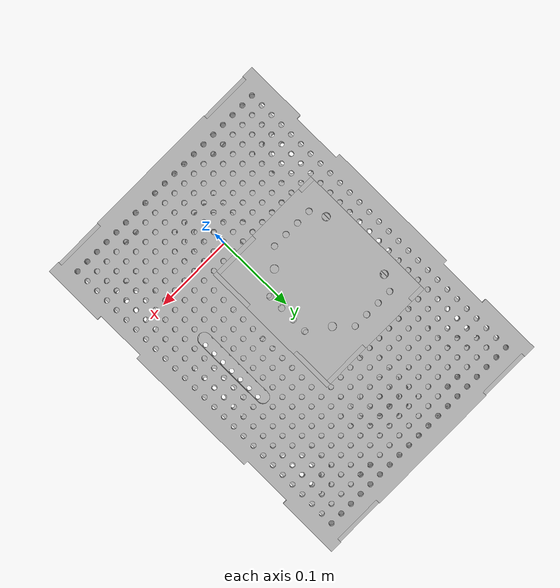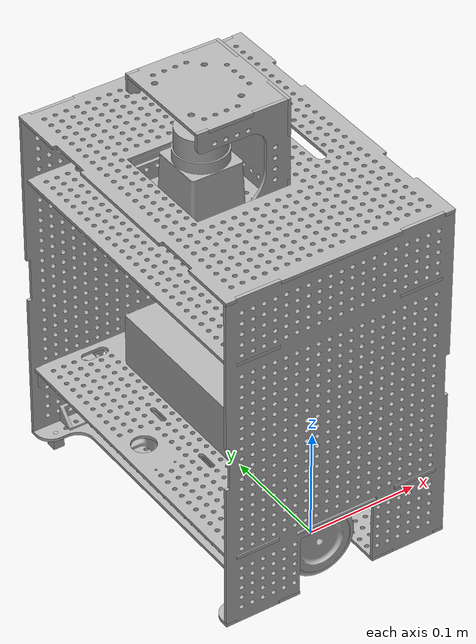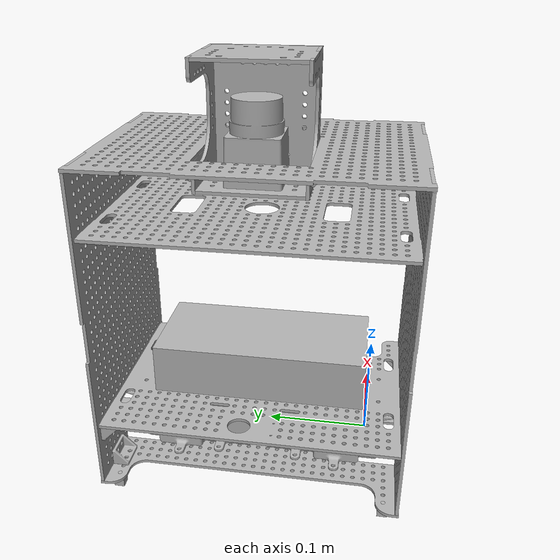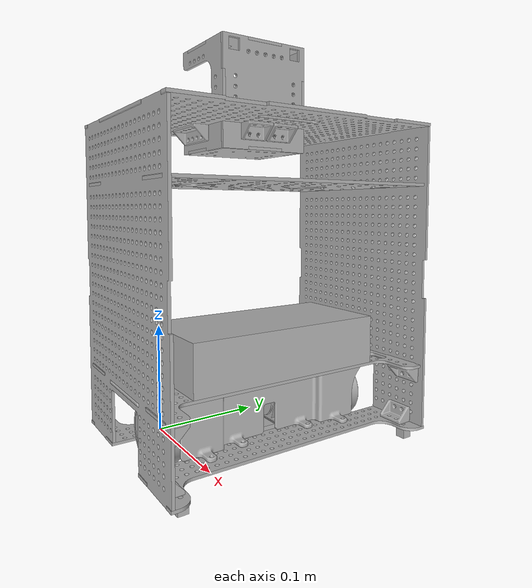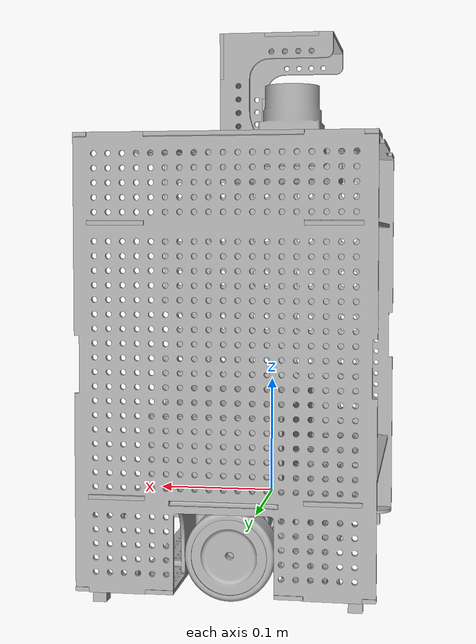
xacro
<?xml version="1.0" ?>
<robot name="tartinator_noencoder" xmlns:xacro="http://www.ros.org/wiki/xacro">

<xacro:include filename="$(find tartinator_noencoder_description)/urdf/materials.xacro" />
<xacro:include filename="$(find tartinator_noencoder_description)/urdf/tartinator_noencoder.trans" />
<xacro:include filename="$(find tartinator_noencoder_description)/urdf/tartinator_noencoder.gazebo" />

<link name="base_link">
</link>

<link name="base">
  <inertial>
    <origin xyz="0.020100000000000017 0.10879999999998086 1.6249248159358388e-15" rpy="0 0 0"/>
    <mass value="0.08458971943251423"/>
    <inertia ixx="0.00072" iyy="0.000198" izz="0.000523" ixy="-0.0" iyz="-0.0" ixz="-0.0"/>
  </inertial>
  <visual>
    <origin xyz="0 0 0" rpy="0 0 0"/>
    <geometry>
      <mesh filename="file://$(find tartinator_noencoder_description)/meshes/base.stl" scale="0.001 0.001 0.001"/>
    </geometry>
    <material name="silver"/>
  </visual>
  <collision>
    <origin xyz="0 0 0" rpy="0 0 0"/>
    <geometry>
      <mesh filename="file://$(find tartinator_noencoder_description)/meshes/base.stl" scale="0.001 0.001 0.001"/>
    </geometry>
  </collision>
</link>

<link name="EQUERRE_7">
  <inertial>
    <origin xyz="-0.005431296008595168 0.0056687066755743976 0.004999996250139985" rpy="0 0 0"/>
    <mass value="0.021866191266104597"/>
    <inertia ixx="2e-06" iyy="2e-06" izz="1e-06" ixy="0.0" iyz="-0.0" ixz="-0.0"/>
  </inertial>
  <visual>
    <origin xyz="-0.0186 -0.2388 0.07" rpy="0 0 0"/>
    <geometry>
      <mesh filename="file://$(find tartinator_noencoder_description)/meshes/EQUERRE_7.stl" scale="0.001 0.001 0.001"/>
    </geometry>
    <material name="silver"/>
  </visual>
  <collision>
    <origin xyz="-0.0186 -0.2388 0.07" rpy="0 0 0"/>
    <geometry>
      <mesh filename="file://$(find tartinator_noencoder_description)/meshes/EQUERRE_7.stl" scale="0.001 0.001 0.001"/>
    </geometry>
  </collision>
</link>

<link name="EQUERRE_8">
  <inertial>
    <origin xyz="0.23186870399140486 0.1542687066755744 0.14499999625013998" rpy="0 0 0"/>
    <mass value="0.021866191266104597"/>
    <inertia ixx="2e-06" iyy="2e-06" izz="1e-06" ixy="0.0" iyz="-0.0" ixz="-0.0"/>
  </inertial>
  <visual>
    <origin xyz="0.2187 -0.0902 0.07" rpy="0 0 0"/>
    <geometry>
      <mesh filename="file://$(find tartinator_noencoder_description)/meshes/EQUERRE_8.stl" scale="0.001 0.001 0.001"/>
    </geometry>
    <material name="silver"/>
  </visual>
  <collision>
    <origin xyz="0.2187 -0.0902 0.07" rpy="0 0 0"/>
    <geometry>
      <mesh filename="file://$(find tartinator_noencoder_description)/meshes/EQUERRE_8.stl" scale="0.001 0.001 0.001"/>
    </geometry>
  </collision>
</link>

<link name="MUR_2">
  <inertial>
    <origin xyz="0.08546978359187204 -0.06044999999999989 0.057499999999974065" rpy="0 0 0"/>
    <mass value="0.1545223214885139"/>
    <inertia ixx="0.000605" iyy="0.001811" izz="0.001207" ixy="-0.0" iyz="-0.0" ixz="-0.0"/>
  </inertial>
  <visual>
    <origin xyz="0.2313 -0.31185 0.0575" rpy="0 0 0"/>
    <geometry>
      <mesh filename="file://$(find tartinator_noencoder_description)/meshes/MUR_2.stl" scale="0.001 0.001 0.001"/>
    </geometry>
    <material name="silver"/>
  </visual>
  <collision>
    <origin xyz="0.2313 -0.31185 0.0575" rpy="0 0 0"/>
    <geometry>
      <mesh filename="file://$(find tartinator_noencoder_description)/meshes/MUR_2.stl" scale="0.001 0.001 0.001"/>
    </geometry>
  </collision>
</link>

<link name="MUR_1">
  <inertial>
    <origin xyz="0.08546978359187204 0.06045000000000005 -0.06749999999997404" rpy="0 0 0"/>
    <mass value="0.1545223214885139"/>
    <inertia ixx="0.000605" iyy="0.001811" izz="0.001207" ixy="0.0" iyz="-0.0" ixz="0.0"/>
  </inertial>
  <visual>
    <origin xyz="0.2313 0.09425 -0.0675" rpy="0 0 0"/>
    <geometry>
      <mesh filename="file://$(find tartinator_noencoder_description)/meshes/MUR_1.stl" scale="0.001 0.001 0.001"/>
    </geometry>
    <material name="silver"/>
  </visual>
  <collision>
    <origin xyz="0.2313 0.09425 -0.0675" rpy="0 0 0"/>
    <geometry>
      <mesh filename="file://$(find tartinator_noencoder_description)/meshes/MUR_1.stl" scale="0.001 0.001 0.001"/>
    </geometry>
  </collision>
</link>

<link name="ROULEUR_1">
  <inertial>
    <origin xyz="0.007740619444043837 8.326672684688674e-17 1.752764600126966e-14" rpy="0 0 0"/>
    <mass value="0.008176271675834882"/>
    <inertia ixx="0.0" iyy="0.0" izz="0.0" ixy="0.0" iyz="-0.0" ixz="0.0"/>
  </inertial>
  <visual>
    <origin xyz="-0.0186 -0.2388 0.09" rpy="0 0 0"/>
    <geometry>
      <mesh filename="file://$(find tartinator_noencoder_description)/meshes/ROULEUR_1.stl" scale="0.001 0.001 0.001"/>
    </geometry>
    <material name="silver"/>
  </visual>
  <collision>
    <origin xyz="-0.0186 -0.2388 0.09" rpy="0 0 0"/>
    <geometry>
      <mesh filename="file://$(find tartinator_noencoder_description)/meshes/ROULEUR_1.stl" scale="0.001 0.001 0.001"/>
    </geometry>
  </collision>
</link>

<link name="ROULEUR_2">
  <inertial>
    <origin xyz="-0.014959380555956168 -0.1113999999999999 -0.17999999999998242" rpy="0 0 0"/>
    <mass value="0.008176271675834882"/>
    <inertia ixx="0.0" iyy="0.0" izz="0.0" ixy="-0.0" iyz="0.0" ixz="0.0"/>
  </inertial>
  <visual>
    <origin xyz="-0.0413 -0.0902 -0.09" rpy="0 0 0"/>
    <geometry>
      <mesh filename="file://$(find tartinator_noencoder_description)/meshes/ROULEUR_2.stl" scale="0.001 0.001 0.001"/>
    </geometry>
    <material name="silver"/>
  </visual>
  <collision>
    <origin xyz="-0.0413 -0.0902 -0.09" rpy="0 0 0"/>
    <geometry>
      <mesh filename="file://$(find tartinator_noencoder_description)/meshes/ROULEUR_2.stl" scale="0.001 0.001 0.001"/>
    </geometry>
  </collision>
</link>

<link name="ROULEUR_3">
  <inertial>
    <origin xyz="-0.01495938055595615 -0.1113999999999999 0.18000000000001753" rpy="0 0 0"/>
    <mass value="0.008176271675834882"/>
    <inertia ixx="0.0" iyy="0.0" izz="0.0" ixy="0.0" iyz="-0.0" ixz="0.0"/>
  </inertial>
  <visual>
    <origin xyz="-0.0413 -0.0902 0.09" rpy="0 0 0"/>
    <geometry>
      <mesh filename="file://$(find tartinator_noencoder_description)/meshes/ROULEUR_3.stl" scale="0.001 0.001 0.001"/>
    </geometry>
    <material name="silver"/>
  </visual>
  <collision>
    <origin xyz="-0.0413 -0.0902 0.09" rpy="0 0 0"/>
    <geometry>
      <mesh filename="file://$(find tartinator_noencoder_description)/meshes/ROULEUR_3.stl" scale="0.001 0.001 0.001"/>
    </geometry>
  </collision>
</link>

<link name="ROULEUR_4">
  <inertial>
    <origin xyz="0.24504061944404387 0.1486000000000001 0.18000000000001753" rpy="0 0 0"/>
    <mass value="0.008176271675834882"/>
    <inertia ixx="0.0" iyy="0.0" izz="0.0" ixy="0.0" iyz="-0.0" ixz="0.0"/>
  </inertial>
  <visual>
    <origin xyz="0.2187 -0.0902 0.09" rpy="0 0 0"/>
    <geometry>
      <mesh filename="file://$(find tartinator_noencoder_description)/meshes/ROULEUR_4.stl" scale="0.001 0.001 0.001"/>
    </geometry>
    <material name="silver"/>
  </visual>
  <collision>
    <origin xyz="0.2187 -0.0902 0.09" rpy="0 0 0"/>
    <geometry>
      <mesh filename="file://$(find tartinator_noencoder_description)/meshes/ROULEUR_4.stl" scale="0.001 0.001 0.001"/>
    </geometry>
  </collision>
</link>

<link name="AJUSTEUR_1">
  <inertial>
    <origin xyz="-0.002299999999999993 0.05360000000000005 -0.019499999999998744" rpy="0 0 0"/>
    <mass value="0.031016346714125155"/>
    <inertia ixx="6.8e-05" iyy="5e-06" izz="6.2e-05" ixy="-0.0" iyz="-0.0" ixz="-0.0"/>
  </inertial>
  <visual>
    <origin xyz="-0.0186 -0.0552 -0.0195" rpy="0 0 0"/>
    <geometry>
      <mesh filename="file://$(find tartinator_noencoder_description)/meshes/AJUSTEUR_1.stl" scale="0.001 0.001 0.001"/>
    </geometry>
    <material name="silver"/>
  </visual>
  <collision>
    <origin xyz="-0.0186 -0.0552 -0.0195" rpy="0 0 0"/>
    <geometry>
      <mesh filename="file://$(find tartinator_noencoder_description)/meshes/AJUSTEUR_1.stl" scale="0.001 0.001 0.001"/>
    </geometry>
  </collision>
</link>

<link name="MOTEUR_RE280_1">
  <inertial>
    <origin xyz="-0.020306444300990194 -0.00730006479165668 -0.019500000000007203" rpy="0 0 0"/>
    <mass value="0.4751614351527999"/>
    <inertia ixx="0.000281" iyy="7.9e-05" izz="0.000284" ixy="-0.0" iyz="0.0" ixz="0.0"/>
  </inertial>
  <visual>
    <origin xyz="-0.014 -0.1624 -0.0195" rpy="0 0 0"/>
    <geometry>
      <mesh filename="file://$(find tartinator_noencoder_description)/meshes/MOTEUR_RE280_1.stl" scale="0.001 0.001 0.001"/>
    </geometry>
    <material name="silver"/>
  </visual>
  <collision>
    <origin xyz="-0.014 -0.1624 -0.0195" rpy="0 0 0"/>
    <geometry>
      <mesh filename="file://$(find tartinator_noencoder_description)/meshes/MOTEUR_RE280_1.stl" scale="0.001 0.001 0.001"/>
    </geometry>
  </collision>
</link>

<link name="RENFORCEUR_1">
  <inertial>
    <origin xyz="-0.01319222141965296 -0.01949822796162179 -0.019500000000056323" rpy="0 0 0"/>
    <mass value="0.013085957096988645"/>
    <inertia ixx="5e-06" iyy="5e-06" izz="5e-06" ixy="-0.0" iyz="-0.0" ixz="-0.0"/>
  </inertial>
  <visual>
    <origin xyz="-0.0131 -0.1624 -0.0195" rpy="0 0 0"/>
    <geometry>
      <mesh filename="file://$(find tartinator_noencoder_description)/meshes/RENFORCEUR_1.stl" scale="0.001 0.001 0.001"/>
    </geometry>
    <material name="silver"/>
  </visual>
  <collision>
    <origin xyz="-0.0131 -0.1624 -0.0195" rpy="0 0 0"/>
    <geometry>
      <mesh filename="file://$(find tartinator_noencoder_description)/meshes/RENFORCEUR_1.stl" scale="0.001 0.001 0.001"/>
    </geometry>
  </collision>
</link>

<link name="EQUERRE_9">
  <inertial>
    <origin xyz="-0.028131296008595163 -0.11706870667557423 0.15500000374985998" rpy="0 0 0"/>
    <mass value="0.021866191266104597"/>
    <inertia ixx="2e-06" iyy="2e-06" izz="1e-06" ixy="-0.0" iyz="-0.0" ixz="0.0"/>
  </inertial>
  <visual>
    <origin xyz="-0.0413 -0.0902 0.08" rpy="0 0 0"/>
    <geometry>
      <mesh filename="file://$(find tartinator_noencoder_description)/meshes/EQUERRE_9.stl" scale="0.001 0.001 0.001"/>
    </geometry>
    <material name="silver"/>
  </visual>
  <collision>
    <origin xyz="-0.0413 -0.0902 0.08" rpy="0 0 0"/>
    <geometry>
      <mesh filename="file://$(find tartinator_noencoder_description)/meshes/EQUERRE_9.stl" scale="0.001 0.001 0.001"/>
    </geometry>
  </collision>
</link>

<link name="MOTEUR_RE280_2">
  <inertial>
    <origin xyz="0.0325935556990098 -0.06579993520834332 0.0140000000000072" rpy="0 0 0"/>
    <mass value="0.4751614351527999"/>
    <inertia ixx="0.000281" iyy="7.9e-05" izz="0.000284" ixy="0.0" iyz="0.0" ixz="-0.0"/>
  </inertial>
  <visual>
    <origin xyz="0.0389 -0.1283 0.014" rpy="0 0 0"/>
    <geometry>
      <mesh filename="file://$(find tartinator_noencoder_description)/meshes/MOTEUR_RE280_2.stl" scale="0.001 0.001 0.001"/>
    </geometry>
    <material name="silver"/>
  </visual>
  <collision>
    <origin xyz="0.0389 -0.1283 0.014" rpy="0 0 0"/>
    <geometry>
      <mesh filename="file://$(find tartinator_noencoder_description)/meshes/MOTEUR_RE280_2.stl" scale="0.001 0.001 0.001"/>
    </geometry>
  </collision>
</link>

<link name="COQUEMOTEUR_1">
  <inertial>
    <origin xyz="-0.04190305185643914 -0.079950790474755 0.04997596338264226" rpy="0 0 0"/>
    <mass value="0.13710891584726362"/>
    <inertia ixx="0.000871" iyy="0.000166" izz="0.000824" ixy="-0.0" iyz="-0.0" ixz="0.0"/>
  </inertial>
  <visual>
    <origin xyz="-0.0186 -0.1888 0.05" rpy="0 0 0"/>
    <geometry>
      <mesh filename="file://$(find tartinator_noencoder_description)/meshes/COQUEMOTEUR_1.stl" scale="0.001 0.001 0.001"/>
    </geometry>
    <material name="silver"/>
  </visual>
  <collision>
    <origin xyz="-0.0186 -0.1888 0.05" rpy="0 0 0"/>
    <geometry>
      <mesh filename="file://$(find tartinator_noencoder_description)/meshes/COQUEMOTEUR_1.stl" scale="0.001 0.001 0.001"/>
    </geometry>
  </collision>
</link>

<link name="ETAGIERE_1">
  <inertial>
    <origin xyz="-0.001499999999999925 -0.12008310563598368 0.005162909907198497" rpy="0 0 0"/>
    <mass value="0.12533443516666082"/>
    <inertia ixx="0.001191" iyy="0.000308" izz="0.000883" ixy="-0.0" iyz="-1e-06" ixz="-0.0"/>
  </inertial>
  <visual>
    <origin xyz="0.0436 -0.2288 0.02" rpy="0 0 0"/>
    <geometry>
      <mesh filename="file://$(find tartinator_noencoder_description)/meshes/ETAGIERE_1.stl" scale="0.001 0.001 0.001"/>
    </geometry>
    <material name="silver"/>
  </visual>
  <collision>
    <origin xyz="0.0436 -0.2288 0.02" rpy="0 0 0"/>
    <geometry>
      <mesh filename="file://$(find tartinator_noencoder_description)/meshes/ETAGIERE_1.stl" scale="0.001 0.001 0.001"/>
    </geometry>
  </collision>
</link>

<link name="EQUERRE_DEMI_6">
  <inertial>
    <origin xyz="0.24554412968677047 0.0922558698513466 -0.16392357538952462" rpy="0 0 0"/>
    <mass value="0.035376134311278645"/>
    <inertia ixx="1e-05" iyy="1e-05" izz="2e-06" ixy="-0.0" iyz="0.0" ixz="-0.0"/>
  </inertial>
  <visual>
    <origin xyz="0.2839 -0.1524 -0.09" rpy="0 0 0"/>
    <geometry>
      <mesh filename="file://$(find tartinator_noencoder_description)/meshes/EQUERRE_DEMI_6.stl" scale="0.001 0.001 0.001"/>
    </geometry>
    <material name="silver"/>
  </visual>
  <collision>
    <origin xyz="0.2839 -0.1524 -0.09" rpy="0 0 0"/>
    <geometry>
      <mesh filename="file://$(find tartinator_noencoder_description)/meshes/EQUERRE_DEMI_6.stl" scale="0.001 0.001 0.001"/>
    </geometry>
  </collision>
</link>

<link name="EQUERRE_5">
  <inertial>
    <origin xyz="0.2457312933244257 0.09206870399140485 0.17499999625014" rpy="0 0 0"/>
    <mass value="0.021866191266104597"/>
    <inertia ixx="2e-06" iyy="2e-06" izz="1e-06" ixy="-0.0" iyz="-0.0" ixz="0.0"/>
  </inertial>
  <visual>
    <origin xyz="0.2839 -0.1524 0.09" rpy="0 0 0"/>
    <geometry>
      <mesh filename="file://$(find tartinator_noencoder_description)/meshes/EQUERRE_5.stl" scale="0.001 0.001 0.001"/>
    </geometry>
    <material name="silver"/>
  </visual>
  <collision>
    <origin xyz="0.2839 -0.1524 0.09" rpy="0 0 0"/>
    <geometry>
      <mesh filename="file://$(find tartinator_noencoder_description)/meshes/EQUERRE_5.stl" scale="0.001 0.001 0.001"/>
    </geometry>
  </collision>
</link>

<link name="EQUERRE_6">
  <inertial>
    <origin xyz="-0.014268703991404796 -0.17926870667557426 0.17499999625014" rpy="0 0 0"/>
    <mass value="0.021866191266104597"/>
    <inertia ixx="2e-06" iyy="2e-06" izz="1e-06" ixy="0.0" iyz="0.0" ixz="0.0"/>
  </inertial>
  <visual>
    <origin xyz="0.0239 -0.1524 0.09" rpy="0 0 0"/>
    <geometry>
      <mesh filename="file://$(find tartinator_noencoder_description)/meshes/EQUERRE_6.stl" scale="0.001 0.001 0.001"/>
    </geometry>
    <material name="silver"/>
  </visual>
  <collision>
    <origin xyz="0.0239 -0.1524 0.09" rpy="0 0 0"/>
    <geometry>
      <mesh filename="file://$(find tartinator_noencoder_description)/meshes/EQUERRE_6.stl" scale="0.001 0.001 0.001"/>
    </geometry>
  </collision>
</link>

<link name="ETAGIEREHAUT_1">
  <inertial>
    <origin xyz="-0.0014999999999998626 0.14459999999994302 -0.07499999999999794" rpy="0 0 0"/>
    <mass value="0.13473900671605235"/>
    <inertia ixx="0.001425" iyy="0.000497" izz="0.000928" ixy="-0.0" iyz="-0.0" ixz="-0.0"/>
  </inertial>
  <visual>
    <origin xyz="0.2336 0.0353 -0.075" rpy="0 0 0"/>
    <geometry>
      <mesh filename="file://$(find tartinator_noencoder_description)/meshes/ETAGIEREHAUT_1.stl" scale="0.001 0.001 0.001"/>
    </geometry>
    <material name="silver"/>
  </visual>
  <collision>
    <origin xyz="0.2336 0.0353 -0.075" rpy="0 0 0"/>
    <geometry>
      <mesh filename="file://$(find tartinator_noencoder_description)/meshes/ETAGIEREHAUT_1.stl" scale="0.001 0.001 0.001"/>
    </geometry>
  </collision>
</link>

<link name="TOIT_1">
  <inertial>
    <origin xyz="0.0015000000000000013 0.14109999999997497 -0.07203884705466876" rpy="0 0 0"/>
    <mass value="0.12786286232457442"/>
    <inertia ixx="0.001537" iyy="0.000513" izz="0.001024" ixy="0.0" iyz="0.0" ixz="-0.0"/>
  </inertial>
  <visual>
    <origin xyz="0.2971 0.0323 -0.075" rpy="0 0 0"/>
    <geometry>
      <mesh filename="file://$(find tartinator_noencoder_description)/meshes/TOIT_1.stl" scale="0.001 0.001 0.001"/>
    </geometry>
    <material name="silver"/>
  </visual>
  <collision>
    <origin xyz="0.2971 0.0323 -0.075" rpy="0 0 0"/>
    <geometry>
      <mesh filename="file://$(find tartinator_noencoder_description)/meshes/TOIT_1.stl" scale="0.001 0.001 0.001"/>
    </geometry>
  </collision>
</link>

<link name="EQUERRE_DEMI_4">
  <inertial>
    <origin xyz="0.00524412968677046 0.005855869851346604 -0.013923575389524708" rpy="0 0 0"/>
    <mass value="0.035376134311278645"/>
    <inertia ixx="1e-05" iyy="1e-05" izz="2e-06" ixy="-0.0" iyz="0.0" ixz="-0.0"/>
  </inertial>
  <visual>
    <origin xyz="0.2941 -0.0488 0.02" rpy="0 0 0"/>
    <geometry>
      <mesh filename="file://$(find tartinator_noencoder_description)/meshes/EQUERRE_DEMI_4.stl" scale="0.001 0.001 0.001"/>
    </geometry>
    <material name="silver"/>
  </visual>
  <collision>
    <origin xyz="0.2941 -0.0488 0.02" rpy="0 0 0"/>
    <geometry>
      <mesh filename="file://$(find tartinator_noencoder_description)/meshes/EQUERRE_DEMI_4.stl" scale="0.001 0.001 0.001"/>
    </geometry>
  </collision>
</link>

<link name="EQUERRE_DEMI_5">
  <inertial>
    <origin xyz="-0.1620558703132294 -0.23995586985134634 0.013923575389524712" rpy="0 0 0"/>
    <mass value="0.035376134311278645"/>
    <inertia ixx="1e-05" iyy="1e-05" izz="2e-06" ixy="0.0" iyz="0.0" ixz="0.0"/>
  </inertial>
  <visual>
    <origin xyz="0.1268 -0.4029 0.05" rpy="0 0 0"/>
    <geometry>
      <mesh filename="file://$(find tartinator_noencoder_description)/meshes/EQUERRE_DEMI_5.stl" scale="0.001 0.001 0.001"/>
    </geometry>
    <material name="silver"/>
  </visual>
  <collision>
    <origin xyz="0.1268 -0.4029 0.05" rpy="0 0 0"/>
    <geometry>
      <mesh filename="file://$(find tartinator_noencoder_description)/meshes/EQUERRE_DEMI_5.stl" scale="0.001 0.001 0.001"/>
    </geometry>
  </collision>
</link>

<link name="EQUERRE_3">
  <inertial>
    <origin xyz="-0.09186870399140476 -0.30909999625013984 -0.005668706675574349" rpy="0 0 0"/>
    <mass value="0.021866191266104597"/>
    <inertia ixx="2e-06" iyy="1e-06" izz="2e-06" ixy="-0.0" iyz="-0.0" ixz="0.0"/>
  </inertial>
  <visual>
    <origin xyz="0.1968 -0.4029 -0.03" rpy="0 0 0"/>
    <geometry>
      <mesh filename="file://$(find tartinator_noencoder_description)/meshes/EQUERRE_3.stl" scale="0.001 0.001 0.001"/>
    </geometry>
    <material name="silver"/>
  </visual>
  <collision>
    <origin xyz="0.1968 -0.4029 -0.03" rpy="0 0 0"/>
    <geometry>
      <mesh filename="file://$(find tartinator_noencoder_description)/meshes/EQUERRE_3.stl" scale="0.001 0.001 0.001"/>
    </geometry>
  </collision>
</link>

<link name="EQUERRE_4">
  <inertial>
    <origin xyz="-0.12186870399140476 -0.27909999625013987 -0.005668706675574328" rpy="0 0 0"/>
    <mass value="0.021866191266104597"/>
    <inertia ixx="2e-06" iyy="1e-06" izz="2e-06" ixy="-0.0" iyz="-0.0" ixz="0.0"/>
  </inertial>
  <visual>
    <origin xyz="0.1668 -0.4029 -0.03" rpy="0 0 0"/>
    <geometry>
      <mesh filename="file://$(find tartinator_noencoder_description)/meshes/EQUERRE_4.stl" scale="0.001 0.001 0.001"/>
    </geometry>
    <material name="silver"/>
  </visual>
  <collision>
    <origin xyz="0.1668 -0.4029 -0.03" rpy="0 0 0"/>
    <geometry>
      <mesh filename="file://$(find tartinator_noencoder_description)/meshes/EQUERRE_4.stl" scale="0.001 0.001 0.001"/>
    </geometry>
  </collision>
</link>

<link name="BATTERIE_1">
  <inertial>
    <origin xyz="-0.02499999999999994 9.71445146547012e-17 -0.04999999999999994" rpy="0 0 0"/>
    <mass value="6.320999999999999"/>
    <inertia ixx="0.028497" iyy="0.006584" izz="0.024547" ixy="0.0" iyz="-0.0" ixz="0.0"/>
  </inertial>
  <visual>
    <origin xyz="0.0466 -0.1088 -0.0642" rpy="0 0 0"/>
    <geometry>
      <mesh filename="file://$(find tartinator_noencoder_description)/meshes/BATTERIE_1.stl" scale="0.001 0.001 0.001"/>
    </geometry>
    <material name="silver"/>
  </visual>
  <collision>
    <origin xyz="0.0466 -0.1088 -0.0642" rpy="0 0 0"/>
    <geometry>
      <mesh filename="file://$(find tartinator_noencoder_description)/meshes/BATTERIE_1.stl" scale="0.001 0.001 0.001"/>
    </geometry>
  </collision>
</link>

<link name="ROUE_RIGHT_1">
  <inertial>
    <origin xyz="6.048957476204017e-11 0.014937101615337067 0.0001994198193547407" rpy="0 0 0"/>
    <mass value="0.36488416435780135"/>
    <inertia ixx="8.2e-05" iyy="0.000129" izz="8.4e-05" ixy="-0.0" iyz="-0.0" ixz="0.0"/>
  </inertial>
  <visual>
    <origin xyz="-0.0 -0.2026 -0.0" rpy="0 0 0"/>
    <geometry>
      <mesh filename="file://$(find tartinator_noencoder_description)/meshes/ROUE_RIGHT_1.stl" scale="0.001 0.001 0.001"/>
    </geometry>
    <material name="silver"/>
  </visual>
  <collision>
    <origin xyz="-0.0 -0.2026 -0.0" rpy="0 0 0"/>
    <geometry>
      <mesh filename="file://$(find tartinator_noencoder_description)/meshes/ROUE_RIGHT_1.stl" scale="0.001 0.001 0.001"/>
    </geometry>
  </collision>
</link>

<link name="PNEU_RIGHT_1">
  <inertial>
    <origin xyz="-1.3241126420114455e-15 -0.013250000000000234 -9.124049749754245e-18" rpy="0 0 0"/>
    <mass value="0.2445300334258709"/>
    <inertia ixx="0.000114" iyy="0.000202" izz="0.000114" ixy="-0.0" iyz="0.0" ixz="0.0"/>
  </inertial>
  <visual>
    <origin xyz="0.0 -0.23085 -0.0" rpy="0 0 0"/>
    <geometry>
      <mesh filename="file://$(find tartinator_noencoder_description)/meshes/PNEU_RIGHT_1.stl" scale="0.001 0.001 0.001"/>
    </geometry>
    <material name="silver"/>
  </visual>
  <collision>
    <origin xyz="0.0 -0.23085 -0.0" rpy="0 0 0"/>
    <geometry>
      <mesh filename="file://$(find tartinator_noencoder_description)/meshes/PNEU_RIGHT_1.stl" scale="0.001 0.001 0.001"/>
    </geometry>
  </collision>
</link>

<link name="MURLIDAR_v1_1">
  <inertial>
    <origin xyz="-0.03896726479344048 0.0015000000000001262 0.0070642825717627256" rpy="0 0 0"/>
    <mass value="0.10472248191911718"/>
    <inertia ixx="6.1e-05" iyy="0.000208" izz="0.000147" ixy="0.0" iyz="-0.0" ixz="-0.0"/>
  </inertial>
  <visual>
    <origin xyz="0.283 -0.0599 0.02" rpy="0 0 0"/>
    <geometry>
      <mesh filename="file://$(find tartinator_noencoder_description)/meshes/MURLIDAR_v1_1.stl" scale="0.001 0.001 0.001"/>
    </geometry>
    <material name="silver"/>
  </visual>
  <collision>
    <origin xyz="0.283 -0.0599 0.02" rpy="0 0 0"/>
    <geometry>
      <mesh filename="file://$(find tartinator_noencoder_description)/meshes/MURLIDAR_v1_1.stl" scale="0.001 0.001 0.001"/>
    </geometry>
  </collision>
</link>

<link name="MURLIDAR_v1_2">
  <inertial>
    <origin xyz="-0.08776726479344035 0.040450000000000194 0.30606428257176277" rpy="0 0 0"/>
    <mass value="0.10472248191911718"/>
    <inertia ixx="6.1e-05" iyy="0.000208" izz="0.000147" ixy="0.0" iyz="0.0" ixz="-0.0"/>
  </inertial>
  <visual>
    <origin xyz="0.2342 -0.11575 0.319" rpy="0 0 0"/>
    <geometry>
      <mesh filename="file://$(find tartinator_noencoder_description)/meshes/MURLIDAR_v1_2.stl" scale="0.001 0.001 0.001"/>
    </geometry>
    <material name="silver"/>
  </visual>
  <collision>
    <origin xyz="0.2342 -0.11575 0.319" rpy="0 0 0"/>
    <geometry>
      <mesh filename="file://$(find tartinator_noencoder_description)/meshes/MURLIDAR_v1_2.stl" scale="0.001 0.001 0.001"/>
    </geometry>
  </collision>
</link>

<link name="FONTLIDAR_v1_1">
  <inertial>
    <origin xyz="0.0013580104396149206 0.045899999999994445 -0.0014999999999999493" rpy="0 0 0"/>
    <mass value="0.22524586783497147"/>
    <inertia ixx="0.000173" iyy="0.000207" izz="0.000379" ixy="0.0" iyz="-0.0" ixz="0.0"/>
  </inertial>
  <visual>
    <origin xyz="0.323 -0.0629 -0.0189" rpy="0 0 0"/>
    <geometry>
      <mesh filename="file://$(find tartinator_noencoder_description)/meshes/FONTLIDAR_v1_1.stl" scale="0.001 0.001 0.001"/>
    </geometry>
    <material name="silver"/>
  </visual>
  <collision>
    <origin xyz="0.323 -0.0629 -0.0189" rpy="0 0 0"/>
    <geometry>
      <mesh filename="file://$(find tartinator_noencoder_description)/meshes/FONTLIDAR_v1_1.stl" scale="0.001 0.001 0.001"/>
    </geometry>
  </collision>
</link>

<link name="BASELIDAR_v1_1">
  <inertial>
    <origin xyz="0.0015000000000000013 0.04889999999999627 0.010247212167280279" rpy="0 0 0"/>
    <mass value="0.1803214688625476"/>
    <inertia ixx="0.000236" iyy="0.000103" izz="0.000134" ixy="0.0" iyz="-0.0" ixz="-0.0"/>
  </inertial>
  <visual>
    <origin xyz="0.2719 -0.0599 0.035" rpy="0 0 0"/>
    <geometry>
      <mesh filename="file://$(find tartinator_noencoder_description)/meshes/BASELIDAR_v1_1.stl" scale="0.001 0.001 0.001"/>
    </geometry>
    <material name="silver"/>
  </visual>
  <collision>
    <origin xyz="0.2719 -0.0599 0.035" rpy="0 0 0"/>
    <geometry>
      <mesh filename="file://$(find tartinator_noencoder_description)/meshes/BASELIDAR_v1_1.stl" scale="0.001 0.001 0.001"/>
    </geometry>
  </collision>
</link>

<link name="TOITLIDAR_v1_1">
  <inertial>
    <origin xyz="-0.00150000000000039 4.440892098500626e-16 -0.043521376207477876" rpy="0 0 0"/>
    <mass value="0.17924795366609306"/>
    <inertia ixx="0.000235" iyy="0.000102" izz="0.000133" ixy="0.0" iyz="-0.0" ixz="0.0"/>
  </inertial>
  <visual>
    <origin xyz="0.3741 -0.1088 -0.0189" rpy="0 0 0"/>
    <geometry>
      <mesh filename="file://$(find tartinator_noencoder_description)/meshes/TOITLIDAR_v1_1.stl" scale="0.001 0.001 0.001"/>
    </geometry>
    <material name="silver"/>
  </visual>
  <collision>
    <origin xyz="0.3741 -0.1088 -0.0189" rpy="0 0 0"/>
    <geometry>
      <mesh filename="file://$(find tartinator_noencoder_description)/meshes/TOITLIDAR_v1_1.stl" scale="0.001 0.001 0.001"/>
    </geometry>
  </collision>
</link>

<link name="R325-URG-04LX-UG01_v1_1">
  <inertial>
    <origin xyz="-0.03160139346446028 -0.020070682968072934 -0.01990943958963791" rpy="0 0 0"/>
    <mass value="1.1170076799759243"/>
    <inertia ixx="0.000384" iyy="0.000629" izz="0.000628" ixy="2e-06" iyz="-1e-06" ixz="-1e-06"/>
  </inertial>
  <visual>
    <origin xyz="0.2719 -0.1288 0.01" rpy="0 0 0"/>
    <geometry>
      <mesh filename="file://$(find tartinator_noencoder_description)/meshes/R325-URG-04LX-UG01_v1_1.stl" scale="0.001 0.001 0.001"/>
    </geometry>
    <material name="silver"/>
  </visual>
  <collision>
    <origin xyz="0.2719 -0.1288 0.01" rpy="0 0 0"/>
    <geometry>
      <mesh filename="file://$(find tartinator_noencoder_description)/meshes/R325-URG-04LX-UG01_v1_1.stl" scale="0.001 0.001 0.001"/>
    </geometry>
  </collision>
</link>

<link name="ROUE_LEFT_1">
  <inertial>
    <origin xyz="0.20960000006049026 -0.02493710161533701 -0.0001994198193547407" rpy="0 0 0"/>
    <mass value="0.36488416435780135"/>
    <inertia ixx="8.2e-05" iyy="0.000129" izz="8.4e-05" ixy="0.0" iyz="-0.0" ixz="-0.0"/>
  </inertial>
  <visual>
    <origin xyz="0.0 0.0 0.0" rpy="0 0 0"/>
    <geometry>
      <mesh filename="file://$(find tartinator_noencoder_description)/meshes/ROUE_LEFT_1.stl" scale="0.001 0.001 0.001"/>
    </geometry>
    <material name="silver"/>
  </visual>
  <collision>
    <origin xyz="0.0 0.0 0.0" rpy="0 0 0"/>
    <geometry>
      <mesh filename="file://$(find tartinator_noencoder_description)/meshes/ROUE_LEFT_1.stl" scale="0.001 0.001 0.001"/>
    </geometry>
  </collision>
</link>

<link name="PNEU_LEFT_1">
  <inertial>
    <origin xyz="9.124049749754295e-18 0.013250000000000005 2.737214924926292e-17" rpy="0 0 0"/>
    <mass value="0.2445300334258709"/>
    <inertia ixx="0.000114" iyy="0.000202" izz="0.000114" ixy="0.0" iyz="0.0" ixz="0.0"/>
  </inertial>
  <visual>
    <origin xyz="-0.0 0.01325 -0.0" rpy="0 0 0"/>
    <geometry>
      <mesh filename="file://$(find tartinator_noencoder_description)/meshes/PNEU_LEFT_1.stl" scale="0.001 0.001 0.001"/>
    </geometry>
    <material name="silver"/>
  </visual>
  <collision>
    <origin xyz="-0.0 0.01325 -0.0" rpy="0 0 0"/>
    <geometry>
      <mesh filename="file://$(find tartinator_noencoder_description)/meshes/PNEU_LEFT_1.stl" scale="0.001 0.001 0.001"/>
    </geometry>
  </collision>
</link>

<joint name="Rigid 0" type="fixed">
  <origin xyz="0 0 0" rpy="0 1.57 0"/>
  <parent link="base_link"/>
  <child link="base"/>
</joint>

<joint name="Rigid 1" type="fixed">
  <origin xyz="0.0186 0.2388 -0.07" rpy="0 0 0"/>
  <parent link="base"/>
  <child link="EQUERRE_7"/>
</joint>

<joint name="Rigid 2" type="fixed">
  <origin xyz="-0.2187 0.0902 -0.07" rpy="0 0 0"/>
  <parent link="base"/>
  <child link="EQUERRE_8"/>
</joint>

<joint name="Rigid 3" type="fixed">
  <origin xyz="-0.2499 0.07305 0.0125" rpy="0 0 0"/>
  <parent link="EQUERRE_7"/>
  <child link="MUR_2"/>
</joint>

<joint name="Rigid 5" type="fixed">
  <origin xyz="-0.2726 -0.18445 0.1475" rpy="0 0 0"/>
  <parent link="EQUERRE_9"/>
  <child link="MUR_1"/>
</joint>

<joint name="Rigid 6" type="fixed">
  <origin xyz="0.0186 0.2388 -0.09" rpy="0 0 0"/>
  <parent link="base"/>
  <child link="ROULEUR_1"/>
</joint>

<joint name="Rigid 7" type="fixed">
  <origin xyz="0.0413 0.0902 0.09" rpy="0 0 0"/>
  <parent link="base"/>
  <child link="ROULEUR_2"/>
</joint>

<joint name="Rigid 8" type="fixed">
  <origin xyz="0.0413 0.0902 -0.09" rpy="0 0 0"/>
  <parent link="base"/>
  <child link="ROULEUR_3"/>
</joint>

<joint name="Rigid 9" type="fixed">
  <origin xyz="-0.2187 0.0902 -0.09" rpy="0 0 0"/>
  <parent link="base"/>
  <child link="ROULEUR_4"/>
</joint>

<joint name="Rigid 10" type="fixed">
  <origin xyz="0.0186 0.0552 0.0195" rpy="0 0 0"/>
  <parent link="base"/>
  <child link="AJUSTEUR_1"/>
</joint>

<joint name="Rigid 18" type="fixed">
  <origin xyz="-0.0046 0.1072 0.0" rpy="0 0 0"/>
  <parent link="AJUSTEUR_1"/>
  <child link="MOTEUR_RE280_1"/>
</joint>

<joint name="Rigid 19" type="fixed">
  <origin xyz="-0.0009 0.0 0.0" rpy="0 0 0"/>
  <parent link="MOTEUR_RE280_1"/>
  <child link="RENFORCEUR_1"/>
</joint>

<joint name="Rigid 21" type="fixed">
  <origin xyz="0.0413 0.0902 -0.08" rpy="0 0 0"/>
  <parent link="base"/>
  <child link="EQUERRE_9"/>
</joint>

<joint name="Rigid 27" type="fixed">
  <origin xyz="-0.0575 0.0731 -0.0335" rpy="0 0 0"/>
  <parent link="AJUSTEUR_1"/>
  <child link="MOTEUR_RE280_2"/>
</joint>

<joint name="Rigid 31" type="fixed">
  <origin xyz="0.0186 0.1888 -0.05" rpy="0 0 0"/>
  <parent link="base"/>
  <child link="COQUEMOTEUR_1"/>
</joint>

<joint name="Rigid 32" type="fixed">
  <origin xyz="-0.0622 0.04 0.03" rpy="0 0 0"/>
  <parent link="COQUEMOTEUR_1"/>
  <child link="ETAGIERE_1"/>
</joint>

<joint name="Rigid 33" type="fixed">
  <origin xyz="-0.2403 -0.0764 0.11" rpy="0 0 0"/>
  <parent link="ETAGIERE_1"/>
  <child link="EQUERRE_DEMI_6"/>
</joint>

<joint name="Rigid 34" type="fixed">
  <origin xyz="-0.2403 -0.0764 -0.07" rpy="0 0 0"/>
  <parent link="ETAGIERE_1"/>
  <child link="EQUERRE_5"/>
</joint>

<joint name="Rigid 35" type="fixed">
  <origin xyz="0.0197 -0.0764 -0.07" rpy="0 0 0"/>
  <parent link="ETAGIERE_1"/>
  <child link="EQUERRE_6"/>
</joint>

<joint name="Rigid 36" type="fixed">
  <origin xyz="-0.0023 0.05895 0.0075" rpy="0 0 0"/>
  <parent link="MUR_1"/>
  <child link="ETAGIEREHAUT_1"/>
</joint>

<joint name="Rigid 37" type="fixed">
  <origin xyz="-0.0658 0.06195 0.0075" rpy="0 0 0"/>
  <parent link="MUR_1"/>
  <child link="TOIT_1"/>
</joint>

<joint name="Rigid 38" type="fixed">
  <origin xyz="0.003 0.0811 -0.095" rpy="0 0 0"/>
  <parent link="TOIT_1"/>
  <child link="EQUERRE_DEMI_4"/>
</joint>

<joint name="Rigid 40" type="fixed">
  <origin xyz="0.1703 0.4352 -0.125" rpy="0 0 0"/>
  <parent link="TOIT_1"/>
  <child link="EQUERRE_DEMI_5"/>
</joint>

<joint name="Rigid 41" type="fixed">
  <origin xyz="0.1003 0.4352 -0.045" rpy="0 0 0"/>
  <parent link="TOIT_1"/>
  <child link="EQUERRE_3"/>
</joint>

<joint name="Rigid 42" type="fixed">
  <origin xyz="0.1303 0.4352 -0.045" rpy="0 0 0"/>
  <parent link="TOIT_1"/>
  <child link="EQUERRE_4"/>
</joint>

<joint name="Rigid 43" type="fixed">
  <origin xyz="-0.003 -0.12 0.0842" rpy="0 0 0"/>
  <parent link="ETAGIERE_1"/>
  <child link="BATTERIE_1"/>
</joint>

<joint name="Revolute 48" type="continuous">
  <origin xyz="-0.014 0.0402 -0.0195" rpy="0 0 0"/>
  <parent link="MOTEUR_RE280_1"/>
  <child link="ROUE_RIGHT_1"/>
  <axis xyz="-0.0 1.0 0.0"/>
</joint>

<joint name="Rigid 49" type="fixed">
  <origin xyz="-0.0 0.02825 0.0" rpy="0 0 0"/>
  <parent link="ROUE_RIGHT_1"/>
  <child link="PNEU_RIGHT_1"/>
</joint>

<joint name="Rigid 50" type="fixed">
  <origin xyz="0.0111 0.0111 0.0" rpy="0 0 0"/>
  <parent link="EQUERRE_DEMI_4"/>
  <child link="MURLIDAR_v1_1"/>
</joint>

<joint name="Rigid 51" type="fixed">
  <origin xyz="-0.1074 -0.28715 -0.269" rpy="0 0 0"/>
  <parent link="EQUERRE_DEMI_5"/>
  <child link="MURLIDAR_v1_2"/>
</joint>

<joint name="Rigid 53" type="fixed">
  <origin xyz="-0.04 0.003 0.0389" rpy="0 0 0"/>
  <parent link="MURLIDAR_v1_1"/>
  <child link="FONTLIDAR_v1_1"/>
</joint>

<joint name="Rigid 54" type="fixed">
  <origin xyz="0.0111 0.0 -0.015" rpy="0 0 0"/>
  <parent link="MURLIDAR_v1_1"/>
  <child link="BASELIDAR_v1_1"/>
</joint>

<joint name="Rigid 55" type="fixed">
  <origin xyz="-0.0511 0.0459 0.0" rpy="0 0 0"/>
  <parent link="FONTLIDAR_v1_1"/>
  <child link="TOITLIDAR_v1_1"/>
</joint>

<joint name="Rigid 56" type="fixed">
  <origin xyz="0.0 0.0689 0.025" rpy="0 0 0"/>
  <parent link="BASELIDAR_v1_1"/>
  <child link="R325-URG-04LX-UG01_v1_1"/>
</joint>

<joint name="Revolute 63" type="continuous">
  <origin xyz="0.04 -0.13 0.0145" rpy="0 0 0"/>
  <parent link="MOTEUR_RE280_2"/>
  <child link="ROUE_LEFT_1"/>
  <axis xyz="0.0 -1.0 0.0"/>
</joint>

<joint name="Rigid 64" type="fixed">
  <origin xyz="0.0 -0.0135 0.0" rpy="0 0 0"/>
  <parent link="ROUE_LEFT_1"/>
  <child link="PNEU_LEFT_1"/>
</joint>

</robot>

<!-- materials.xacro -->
<robot name="tartinator_noencoder" xmlns:xacro="http://www.ros.org/wiki/xacro" >

<material name="silver">
  <color rgba="0.700 0.700 0.700 1.000"/>
</material>

</robot>

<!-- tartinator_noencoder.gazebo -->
<robot name="tartinator_noencoder" xmlns:xacro="http://www.ros.org/wiki/xacro" >

<xacro:property name="body_color" value="Gazebo/Silver" />

<gazebo>
  <plugin name="control" filename="libgazebo_ros_control.so"/>
</gazebo>
<gazebo reference="base">
  <material>${body_color}</material>
  <mu1>0.2</mu1>
  <mu2>0.2</mu2>
  <self_collide>true</self_collide>
  <gravity>true</gravity>
</gazebo>

<gazebo reference="EQUERRE_7">
  <material>${body_color}</material>
  <mu1>0.2</mu1>
  <mu2>0.2</mu2>
  <self_collide>true</self_collide>
</gazebo>

<gazebo reference="EQUERRE_8">
  <material>${body_color}</material>
  <mu1>0.2</mu1>
  <mu2>0.2</mu2>
  <self_collide>true</self_collide>
</gazebo>

<gazebo reference="MUR_2">
  <material>${body_color}</material>
  <mu1>0.2</mu1>
  <mu2>0.2</mu2>
  <self_collide>true</self_collide>
</gazebo>

<gazebo reference="MUR_1">
  <material>${body_color}</material>
  <mu1>0.2</mu1>
  <mu2>0.2</mu2>
  <self_collide>true</self_collide>
</gazebo>

<gazebo reference="ROULEUR_1">
  <material>${body_color}</material>
  <mu1>0.2</mu1>
  <mu2>0.2</mu2>
  <self_collide>true</self_collide>
</gazebo>

<gazebo reference="ROULEUR_2">
  <material>${body_color}</material>
  <mu1>0.2</mu1>
  <mu2>0.2</mu2>
  <self_collide>true</self_collide>
</gazebo>

<gazebo reference="ROULEUR_3">
  <material>${body_color}</material>
  <mu1>0.2</mu1>
  <mu2>0.2</mu2>
  <self_collide>true</self_collide>
</gazebo>

<gazebo reference="ROULEUR_4">
  <material>${body_color}</material>
  <mu1>0.2</mu1>
  <mu2>0.2</mu2>
  <self_collide>true</self_collide>
</gazebo>

<gazebo reference="AJUSTEUR_1">
  <material>${body_color}</material>
  <mu1>0.2</mu1>
  <mu2>0.2</mu2>
  <self_collide>true</self_collide>
</gazebo>

<gazebo reference="MOTEUR_RE280_1">
  <material>${body_color}</material>
  <mu1>0.2</mu1>
  <mu2>0.2</mu2>
  <self_collide>true</self_collide>
</gazebo>

<gazebo reference="RENFORCEUR_1">
  <material>${body_color}</material>
  <mu1>0.2</mu1>
  <mu2>0.2</mu2>
  <self_collide>true</self_collide>
</gazebo>

<gazebo reference="EQUERRE_9">
  <material>${body_color}</material>
  <mu1>0.2</mu1>
  <mu2>0.2</mu2>
  <self_collide>true</self_collide>
</gazebo>

<gazebo reference="MOTEUR_RE280_2">
  <material>${body_color}</material>
  <mu1>0.2</mu1>
  <mu2>0.2</mu2>
  <self_collide>true</self_collide>
</gazebo>

<gazebo reference="COQUEMOTEUR_1">
  <material>${body_color}</material>
  <mu1>0.2</mu1>
  <mu2>0.2</mu2>
  <self_collide>true</self_collide>
</gazebo>

<gazebo reference="ETAGIERE_1">
  <material>${body_color}</material>
  <mu1>0.2</mu1>
  <mu2>0.2</mu2>
  <self_collide>true</self_collide>
</gazebo>

<gazebo reference="EQUERRE_DEMI_6">
  <material>${body_color}</material>
  <mu1>0.2</mu1>
  <mu2>0.2</mu2>
  <self_collide>true</self_collide>
</gazebo>

<gazebo reference="EQUERRE_5">
  <material>${body_color}</material>
  <mu1>0.2</mu1>
  <mu2>0.2</mu2>
  <self_collide>true</self_collide>
</gazebo>

<gazebo reference="EQUERRE_6">
  <material>${body_color}</material>
  <mu1>0.2</mu1>
  <mu2>0.2</mu2>
  <self_collide>true</self_collide>
</gazebo>

<gazebo reference="ETAGIEREHAUT_1">
  <material>${body_color}</material>
  <mu1>0.2</mu1>
  <mu2>0.2</mu2>
  <self_collide>true</self_collide>
</gazebo>

<gazebo reference="TOIT_1">
  <material>${body_color}</material>
  <mu1>0.2</mu1>
  <mu2>0.2</mu2>
  <self_collide>true</self_collide>
</gazebo>

<gazebo reference="EQUERRE_DEMI_4">
  <material>${body_color}</material>
  <mu1>0.2</mu1>
  <mu2>0.2</mu2>
  <self_collide>true</self_collide>
</gazebo>

<gazebo reference="EQUERRE_DEMI_5">
  <material>${body_color}</material>
  <mu1>0.2</mu1>
  <mu2>0.2</mu2>
  <self_collide>true</self_collide>
</gazebo>

<gazebo reference="EQUERRE_3">
  <material>${body_color}</material>
  <mu1>0.2</mu1>
  <mu2>0.2</mu2>
  <self_collide>true</self_collide>
</gazebo>

<gazebo reference="EQUERRE_4">
  <material>${body_color}</material>
  <mu1>0.2</mu1>
  <mu2>0.2</mu2>
  <self_collide>true</self_collide>
</gazebo>

<gazebo reference="BATTERIE_1">
  <material>${body_color}</material>
  <mu1>0.2</mu1>
  <mu2>0.2</mu2>
  <self_collide>true</self_collide>
</gazebo>

<gazebo reference="ROUE_RIGHT_1">
  <material>${body_color}</material>
  <mu1>0.2</mu1>
  <mu2>0.2</mu2>
  <self_collide>true</self_collide>
</gazebo>

<gazebo reference="PNEU_RIGHT_1">
  <material>${body_color}</material>
  <mu1>0.2</mu1>
  <mu2>0.2</mu2>
  <self_collide>true</self_collide>
</gazebo>

<gazebo reference="MURLIDAR_v1_1">
  <material>${body_color}</material>
  <mu1>0.2</mu1>
  <mu2>0.2</mu2>
  <self_collide>true</self_collide>
</gazebo>

<gazebo reference="MURLIDAR_v1_2">
  <material>${body_color}</material>
  <mu1>0.2</mu1>
  <mu2>0.2</mu2>
  <self_collide>true</self_collide>
</gazebo>

<gazebo reference="FONTLIDAR_v1_1">
  <material>${body_color}</material>
  <mu1>0.2</mu1>
  <mu2>0.2</mu2>
  <self_collide>true</self_collide>
</gazebo>

<gazebo reference="BASELIDAR_v1_1">
  <material>${body_color}</material>
  <mu1>0.2</mu1>
  <mu2>0.2</mu2>
  <self_collide>true</self_collide>
</gazebo>

<gazebo reference="TOITLIDAR_v1_1">
  <material>${body_color}</material>
  <mu1>0.2</mu1>
  <mu2>0.2</mu2>
  <self_collide>true</self_collide>
</gazebo>

<gazebo reference="R325-URG-04LX-UG01_v1_1">
  <material>${body_color}</material>
  <mu1>0.2</mu1>
  <mu2>0.2</mu2>
  <self_collide>true</self_collide>
</gazebo>

<gazebo reference="ROUE_LEFT_1">
  <material>${body_color}</material>
  <mu1>0.2</mu1>
  <mu2>0.2</mu2>
  <self_collide>true</self_collide>
</gazebo>

<gazebo reference="PNEU_LEFT_1">
  <material>${body_color}</material>
  <mu1>0.2</mu1>
  <mu2>0.2</mu2>
  <self_collide>true</self_collide>
</gazebo>

</robot>
